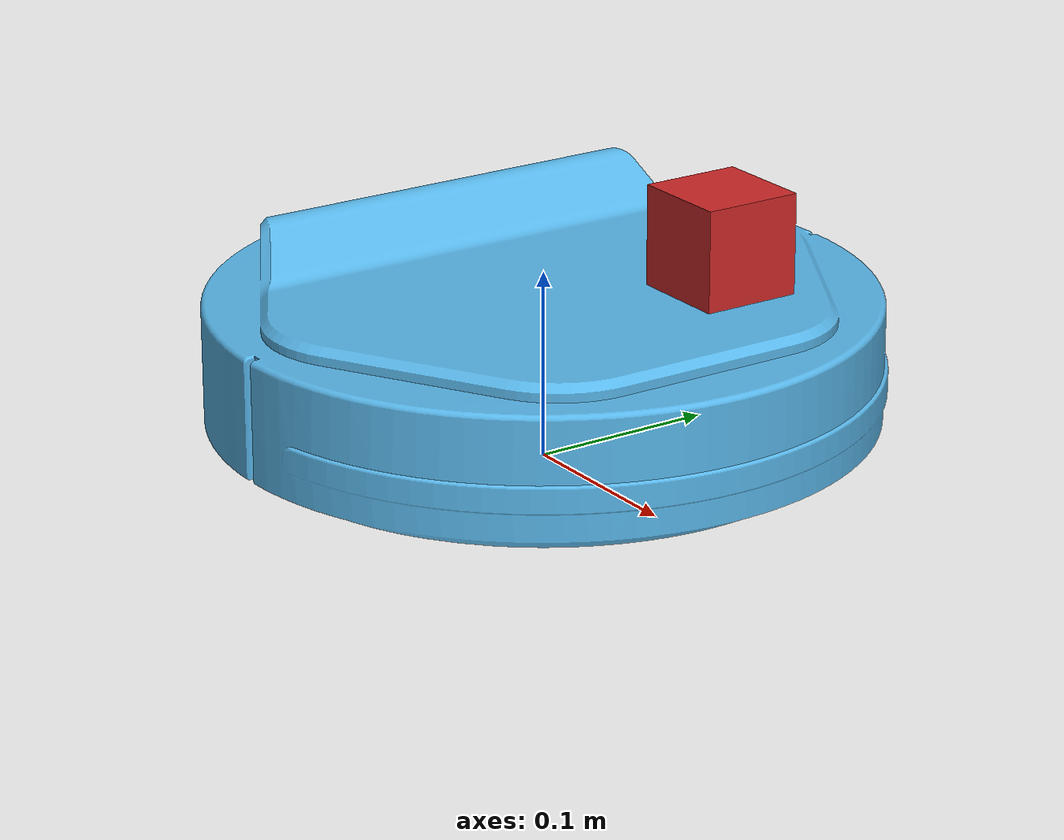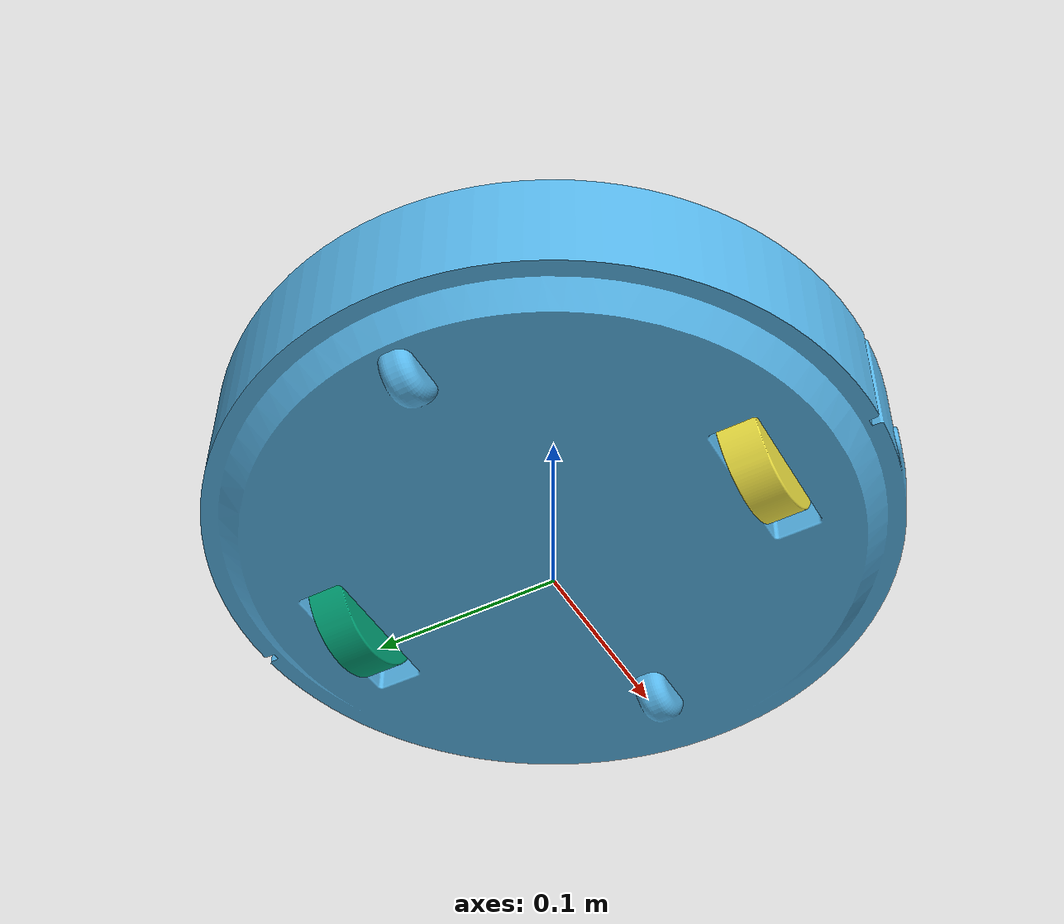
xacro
<?xml version="1.0"?>
<robot name="kobuki_standalone"
	xmlns:sensor="http://playerstage.sourceforge.net/gazebo/xmlschema/#sensor"
	xmlns:controller="http://playerstage.sourceforge.net/gazebo/xmlschema/#controller"
	xmlns:interface="http://playerstage.sourceforge.net/gazebo/xmlschema/#interface"
	xmlns:xacro="http://ros.org/wiki/xacro">
	<!-- Defines the kobuki component tag. -->
	<xacro:include filename="$(find custom_description)/description/kobuki/urdf/kobuki.urdf.xacro" />
	<kobuki/>
	<xacro:include filename="$(find custom_description)/description/lidar.urdf.xacro" />
	<!--  lidar -->
	<sensor_rplidar max_range="3">
		<origin xyz="0.15 0.0 0.15" rpy="0 0.0 0.0" />
	</sensor_rplidar>
</robot>

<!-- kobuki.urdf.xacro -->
<robot name="kobuki" xmlns:xacro="http://ros.org/wiki/xacro">
        <xacro:include filename="$(find custom_description)/description/common_properties.urdf.xacro" />
        <xacro:include filename="$(find custom_description)/description/kobuki/urdf/kobuki_gazebo.urdf.xacro" />
	<!-- Kobuki -->
	<macro name="kobuki">
		<link name="base_footprint" />
		<joint name="base_joint" type="fixed">
			<origin xyz="0 0 0.0102" rpy="0 0 0" />
			<parent link="base_footprint" />
			<child link="base_link" />
		</joint>
		<link name="base_link">
			<visual>
				<geometry>
					<!-- new mesh -->
					<mesh filename="package://kobuki_description/meshes/main_body.dae" />
				</geometry>
				<origin xyz="0.001 0 0.05199" rpy="0 0 0" />
			</visual>
			<collision>
				<geometry>
					<cylinder length="0.10938" radius="0.178" />
				</geometry>
				<origin xyz="0.0 0 0.05949" rpy="0 0 0" />
			</collision>
			<inertial>
				<!-- COM experimentally determined -->
				<origin xyz="0.01 0 0" />
				<mass value="2.4" />
				<!-- 2.4/2.6 kg for small/big battery pack -->
				<inertia ixx="0.019995" ixy="0.0" ixz="0.0" iyy="0.019995" iyz="0.0" izz="0.03675" />
			</inertial>
		</link>
		<joint name="wheel_left_joint" type="continuous">
			<parent link="base_link" />
			<child link="wheel_left_link" />
			<origin xyz="0.00 ${0.23/2} 0.0250" rpy="${-M_PI/2} 0 0" />
			<axis xyz="0 0 1" />
		</joint>
		<link name="wheel_left_link">
			<visual>
				<geometry>
					<mesh filename="package://kobuki_description/meshes/wheel.dae" />
				</geometry>
				<origin xyz="0 0 0" rpy="0 0 0" />
			</visual>
			<collision>
				<geometry>
					<cylinder length="0.0206" radius="0.0352" />
				</geometry>
				<origin rpy="0 0 0" xyz="0 0 0" />
			</collision>
			<inertial>
				<mass value="0.01" />
				<origin xyz="0 0 0" />
				<inertia ixx="0.001" ixy="0.0" ixz="0.0" iyy="0.001" iyz="0.0" izz="0.001" />
			</inertial>
		</link>
		<joint name="wheel_right_joint" type="continuous">
			<parent link="base_link" />
			<child link="wheel_right_link" />
			<origin xyz="0.00 -${0.23/2} 0.0250" rpy="${-M_PI/2} 0 0" />
			<axis xyz="0 0 1" />
		</joint>
		<link name="wheel_right_link">
			<visual>
				<geometry>
					<mesh filename="package://kobuki_description/meshes/wheel.dae" />
				</geometry>
				<origin xyz="0 0 0" rpy="0 0 0" />
			</visual>
			<collision>
				<geometry>
					<cylinder length="0.0206" radius="0.0350" />
				</geometry>
				<origin rpy="0 0 0" xyz="0 0 0" />
			</collision>
			<inertial>
				<mass value="0.01" />
				<origin xyz="0 0 0" />
				<inertia ixx="0.001" ixy="0.0" ixz="0.0" iyy="0.001" iyz="0.0" izz="0.001" />
			</inertial>
		</link>
		<joint name="caster_front_joint" type="fixed">
			<parent link="base_link" />
			<child link="caster_front_link" />
			<origin xyz="0.115 0.0 0.007" rpy="${-M_PI/2} 0 0" />
		</joint>
		<link name="caster_front_link">
			<collision>
				<geometry>
					<cylinder length="0.0176" radius="0.017" />
				</geometry>
				<origin rpy="0 0 0" xyz="0 0 0" />
			</collision>
			<inertial>
				<mass value="0.01" />
				<origin xyz="0 0 0" />
				<inertia ixx="0.001" ixy="0.0" ixz="0.0" iyy="0.001" iyz="0.0" izz="0.001" />
			</inertial>
		</link>
		<joint name="caster_back_joint" type="fixed">
			<parent link="base_link" />
			<child link="caster_back_link" />
			<origin xyz="-0.135 0.0 0.009" rpy="${-M_PI/2} 0 0" />
		</joint>
		<link name="caster_back_link">
			<collision>
				<geometry>
					<cylinder length="0.0176" radius="0.017" />
				</geometry>
				<origin rpy="0 0 0" xyz="0 0 0" />
			</collision>
			<inertial>
				<mass value="0.01" />
				<origin xyz="0 0 0" />
				<inertia ixx="0.001" ixy="0.0" ixz="0.0" iyy="0.001" iyz="0.0" izz="0.001" />
			</inertial>
		</link>
		<!-- Kobuki's sensors -->
		<joint name="gyro_joint" type="fixed">
			<axis xyz="0 1 0" />
			<origin xyz="0.056 0.062 0.0202" rpy="0 0 0" />
			<parent link="base_link" />
			<child link="gyro_link" />
		</joint>
		<link name="gyro_link">
			<inertial>
				<mass value="0.001" />
				<origin xyz="0 0 0" rpy="0 0 0" />
				<inertia ixx="0.0001" ixy="0" ixz="0" iyy="0.000001" iyz="0" izz="0.0001" />
			</inertial>
		</link>
		<joint name="cliff_sensor_left_joint" type="fixed">
			<origin xyz="0.08734 0.13601 0.0214" rpy="0 ${M_PI/2} 0" />
			<parent link="base_link" />
			<child link="cliff_sensor_left_link" />
		</joint>
		<link name="cliff_sensor_left_link">
			<inertial>
				<mass value="0.0001" />
				<origin xyz="0 0 0" />
				<inertia ixx="0.0001" ixy="0.0" ixz="0.0" iyy="0.0001" iyz="0.0" izz="0.0001" />
			</inertial>
		</link>
		<joint name="cliff_sensor_right_joint" type="fixed">
			<origin xyz="0.085 -0.13601 0.0214" rpy="0 ${M_PI/2} 0" />
			<parent link="base_link" />
			<child link="cliff_sensor_right_link" />
		</joint>
		<link name="cliff_sensor_right_link">
			<inertial>
				<mass value="0.0001" />
				<origin xyz="0 0 0" />
				<inertia ixx="0.0001" ixy="0.0" ixz="0.0" iyy="0.0001" iyz="0.0" izz="0.0001" />
			</inertial>
		</link>
		<joint name="cliff_sensor_front_joint" type="fixed">
			<origin xyz="0.156 0.00 0.0214" rpy="0 ${M_PI/2} 0" />
			<parent link="base_link" />
			<child link="cliff_sensor_front_link" />
		</joint>
		<link name="cliff_sensor_front_link">
			<inertial>
				<mass value="0.0001" />
				<origin xyz="0 0 0" />
				<inertia ixx="0.0001" ixy="0.0" ixz="0.0" iyy="0.0001" iyz="0.0" izz="0.0001" />
			</inertial>
		</link>
		<!-- Kobuki Gazebo simulation details -->
		<kobuki_sim />
	</macro>
</robot>

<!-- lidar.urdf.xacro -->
<robot xmlns:xacro="http://www.ros.org/wiki/xacro">
<!-- RPLidar 2D LIDAR -->
<xacro:macro name="sensor_rplidar" params="*origin parent:=base_link max_range:=10.1">
    <joint name="laser" type="fixed">
      <xacro:insert_block name="origin" />
      <parent link="${parent}" />
      <child link="base_laser_link" />
    </joint>

    <link name="base_laser_link">
      <visual>
        <geometry>
          <box size="0.05 0.05 0.05" />
        </geometry>
        <material name="Red" />
      </visual>
      <inertial>
        <mass value="0.000001" />
        <origin xyz="0 0 0" />
        <inertia ixx="0.0001" ixy="0.0" ixz="0.0"
          iyy="0.0001" iyz="0.0"
          izz="0.0001" />
      </inertial>
    </link>

    <!-- Set up laser gazebo details -->
    <gazebo reference="base_laser_link">
      <sensor type="ray" name="laser">
        <pose>0 0 0 0 0 0</pose>
        <visualize>true</visualize>
        <update_rate>6</update_rate>
        <ray>
          <scan>
            <horizontal>
              <samples>360</samples>
              <resolution>1</resolution>
              <min_angle>-3.1415926</min_angle>
              <max_angle>3.1415926</max_angle>
            </horizontal>
          </scan>
          <range>
            <min>0.10</min>
            <max>${max_range}</max>
            <resolution>0.01</resolution>
          </range>
          <noise>
            <type>Gaussian</type>
            <mean>0.0</mean>
            <stddev>0.01</stddev>
          </noise>
        </ray>
        <plugin name="rplidar_node" filename="libgazebo_ros_laser.so">
          <topicName>/laser_scan</topicName>
          <frameName>base_laser_link</frameName>
        </plugin>
      </sensor>
    </gazebo>
  </xacro:macro>
</robot>
